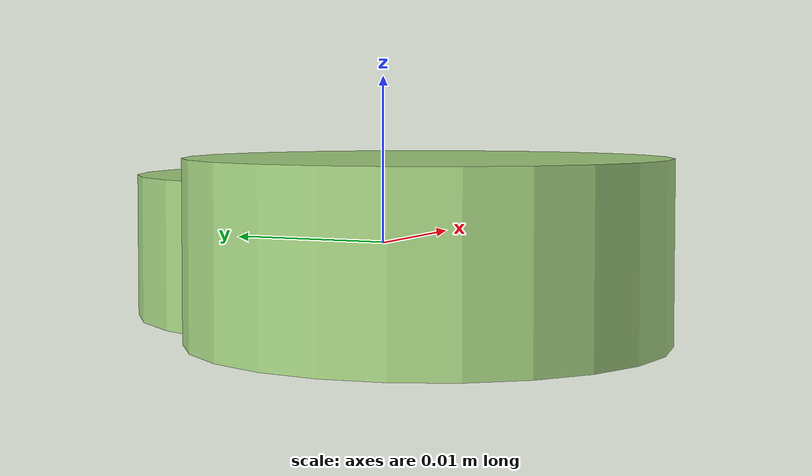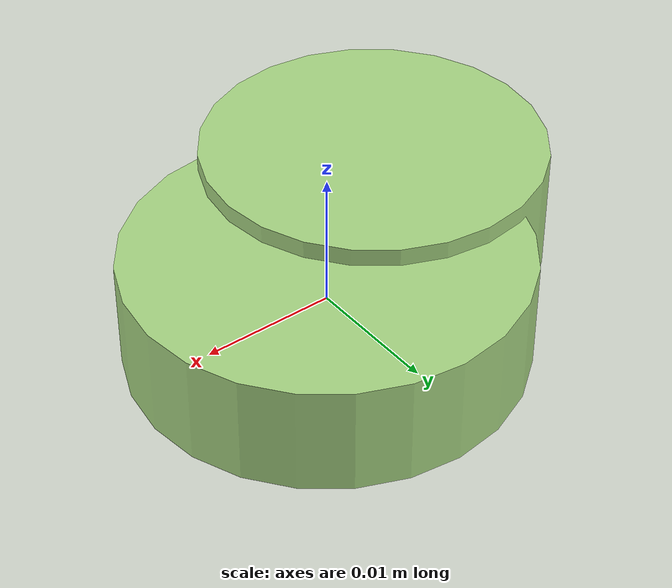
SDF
<?xml version="1.0" ?>
<!-- |    This document was autogenerated by xmacro from data/veggie_template/veggie_base.sdf.xacro  | -->
<!-- |    EDITING THIS FILE BY HAND IS NOT RECOMMENDED                                               | -->
<sdf version="1.8">
	<!-- Parameters -->
	<!-- Base -->
	<!-- Joint 0 -->
	<!-- Link 1 -->
	<!-- Joint 1 -->
	<!-- Link 2 -->
	<!-- Primitives -->
	<!-- All dimensions are half -->
	<!-- Object -->
	<model name="veggie">
		<!-- link0 -->
		<link name="link0">
			<inertial>
				<mass>0.005583207236279731</mass>
				<inertia>
					<ixx>3.305789825510691e-07</ixx>
					<ixy>0</ixy>
					<ixz>0</ixz>
					<iyy>3.305789825510691e-07</iyy>
					<iyz>0</iyz>
					<izz>5.968668789431162e-07</izz>
				</inertia>
			</inertial>
			<visual name="link0_visual">
				<pose>0 0 0 0 0 0</pose>
				<geometry>
					<cylinder>
						<radius>0.014622171174906665</radius>
						<length>0.008312068863230168</length>
					</cylinder>
				</geometry>
				<material>
					<ambient>0.659 0.839 0.514 1</ambient>
					<diffuse>0.659 0.839 0.514 1</diffuse>
					<specular>0 0 0 0</specular>
					<emissive>0 0 0 1</emissive>
				</material>
			</visual>
			<collision name="link0_collision">
				<pose>0 0 0 0 0 0 </pose>
				<geometry>
					<cylinder>
						<radius>0.014622171174906665</radius>
						<length>0.008312068863230168</length>
					</cylinder>
				</geometry>
			</collision>
		</link>
		<!-- link1 -->
		<joint name="joint0" type="fixed">
			<pose relative_to="link0">-0.00946777071228421 -0.0068621553517467454 0.0006126695997740024 0.0 0.0 0.0</pose>
			<parent>link0</parent>
			<child>link1</child>
		</joint>
		<link name="link1">
			<pose relative_to="joint0">0 0 0 0 0 0</pose>
			<inertial>
				<mass>0.005102468149919593</mass>
				<inertia>
					<ixx>2.527476266017128e-07</ixx>
					<ixy>0</ixy>
					<ixz>0</ixz>
					<iyy>2.527476266017128e-07</iyy>
					<iyz>0</iyz>
					<izz>4.2444763451517953e-07</izz>
				</inertia>
			</inertial>
			<visual name="link1_visual">
				<pose>0 0 0 0 0 0</pose>
				<geometry>
					<cylinder>
						<radius>0.012898431612123461</radius>
						<length>0.009762377638782075</length>
					</cylinder>
				</geometry>
				<material>
					<ambient>0.659 0.839 0.514 1</ambient>
					<diffuse>0.659 0.839 0.514 1</diffuse>
					<specular>0 0 0 0</specular>
					<emissive>0 0 0 1</emissive>
				</material>
			</visual>
			<collision name="link1_collision">
				<pose>0 0 0 0 0 0 </pose>
				<geometry>
					<cylinder>
						<radius>0.012898431612123461</radius>
						<length>0.009762377638782075</length>
					</cylinder>
				</geometry>
			</collision>
		</link>
		<!-- link2 -->
	</model>
</sdf>
